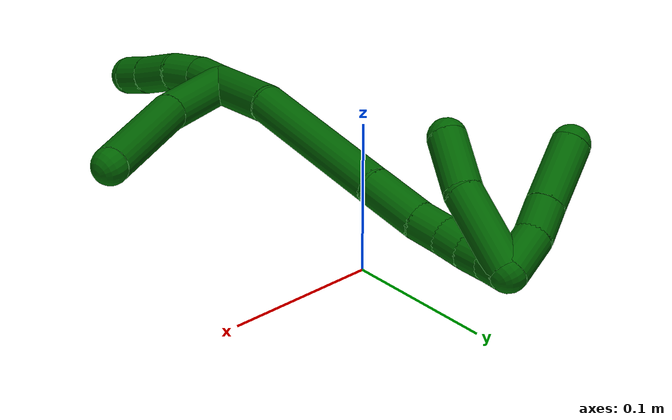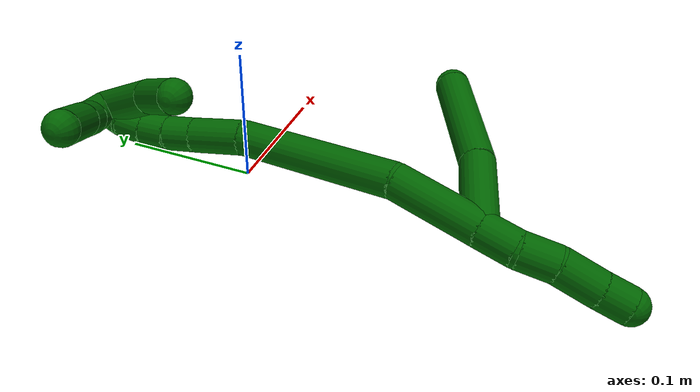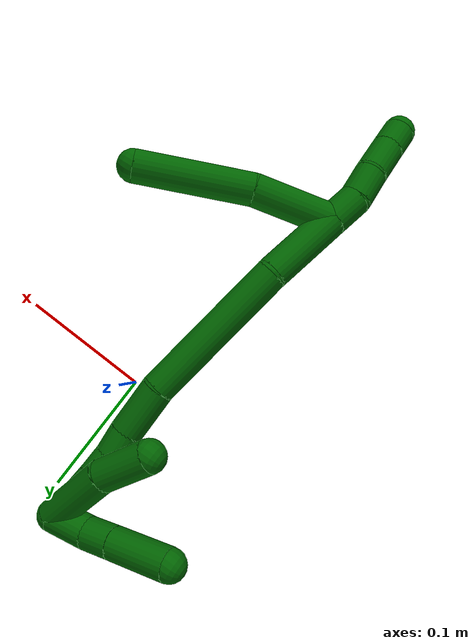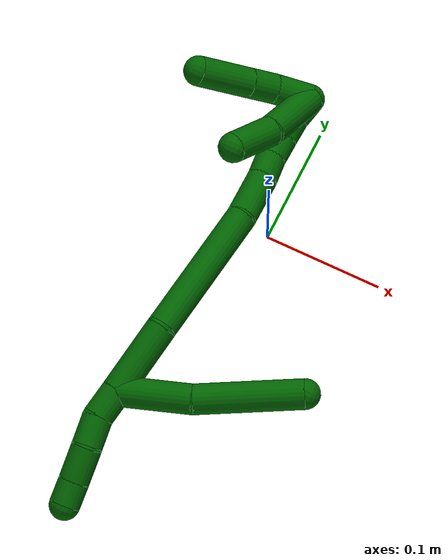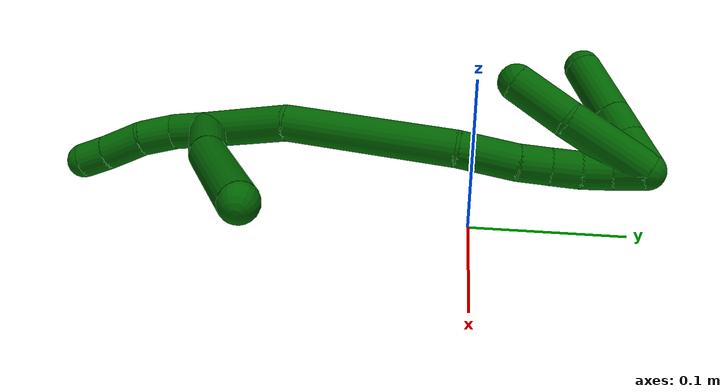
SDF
<sdf version="1.7">
 <world name="default">
  <model name="6">
   <static>0</static>
   <link name="6">
    <collision name="collision-cylinder-e_1_2_8">
     <pose>-0.010832 -0.00222 0.02858 0.077536 -0.361277 -0.014167</pose>
     <geometry><cylinder><radius>0.0125</radius><length>0.061288</length></cylinder></geometry>
     <surface>
      <friction><ode><mu>1.16</mu><mu2>1.16</mu2><slip1>0</slip1><slip2>0</slip2></ode></friction>
      <contact><ode><kp>1e+06</kp><kd>1</kd><max_vel>0</max_vel><min_depth>0.001</min_depth></ode></contact>
     </surface>
    </collision>
    <visual name="visual-cylinder-e_1_2_8">
     <pose>-0.010832 -0.00222 0.02858 0.077536 -0.361277 -0.014167</pose>
     <geometry><cylinder><radius>0.0125</radius><length>0.061288</length></cylinder></geometry>
     <material><ambient>0 0.392157 0.003922 1</ambient></material>
    </visual>
    <collision name="collision-cylinder-e_2_8_6">
     <pose>-0.041973 -0.001655 0.096494 -0.07071 -0.475605 0.017146</pose>
     <geometry><cylinder><radius>0.0125</radius><length>0.088712</length></cylinder></geometry>
     <surface>
      <friction><ode><mu>1.16</mu><mu2>1.16</mu2><slip1>0</slip1><slip2>0</slip2></ode></friction>
      <contact><ode><kp>1e+06</kp><kd>1</kd><max_vel>0</max_vel><min_depth>0.001</min_depth></ode></contact>
     </surface>
    </collision>
    <visual name="visual-cylinder-e_2_8_6">
     <pose>-0.041973 -0.001655 0.096494 -0.07071 -0.475605 0.017146</pose>
     <geometry><cylinder><radius>0.0125</radius><length>0.088712</length></cylinder></geometry>
     <material><ambient>0 0.392157 0.003922 1</ambient></material>
    </visual>
    <collision name="collision-cylinder-e_1_2_9">
     <pose>0.011132 -0.005742 -0.002696 2.00979 1.05283 1.48192</pose>
     <geometry><cylinder><radius>0.0125</radius><length>0.025626</length></cylinder></geometry>
     <surface>
      <friction><ode><mu>1.16</mu><mu2>1.16</mu2><slip1>0</slip1><slip2>0</slip2></ode></friction>
      <contact><ode><kp>1e+06</kp><kd>1</kd><max_vel>0</max_vel><min_depth>0.001</min_depth></ode></contact>
     </surface>
    </collision>
    <visual name="visual-cylinder-e_1_2_9">
     <pose>0.011132 -0.005742 -0.002696 2.00979 1.05283 1.48192</pose>
     <geometry><cylinder><radius>0.0125</radius><length>0.025626</length></cylinder></geometry>
     <material><ambient>0 0.392157 0.003922 1</ambient></material>
    </visual>
    <collision name="collision-cylinder-e_2_9_10">
     <pose>0.033242 -0.017289 -0.004602 1.43545 1.0806 0.964841</pose>
     <geometry><cylinder><radius>0.0125</radius><length>0.024885</length></cylinder></geometry>
     <surface>
      <friction><ode><mu>1.16</mu><mu2>1.16</mu2><slip1>0</slip1><slip2>0</slip2></ode></friction>
      <contact><ode><kp>1e+06</kp><kd>1</kd><max_vel>0</max_vel><min_depth>0.001</min_depth></ode></contact>
     </surface>
    </collision>
    <visual name="visual-cylinder-e_2_9_10">
     <pose>0.033242 -0.017289 -0.004602 1.43545 1.0806 0.964841</pose>
     <geometry><cylinder><radius>0.0125</radius><length>0.024885</length></cylinder></geometry>
     <material><ambient>0 0.392157 0.003922 1</ambient></material>
    </visual>
    <collision name="collision-cylinder-e_3_10_11">
     <pose>0.05823 -0.027234 -0.002918 1.35808 1.2772 1.07959</pose>
     <geometry><cylinder><radius>0.0125</radius><length>0.029274</length></cylinder></geometry>
     <surface>
      <friction><ode><mu>1.16</mu><mu2>1.16</mu2><slip1>0</slip1><slip2>0</slip2></ode></friction>
      <contact><ode><kp>1e+06</kp><kd>1</kd><max_vel>0</max_vel><min_depth>0.001</min_depth></ode></contact>
     </surface>
    </collision>
    <visual name="visual-cylinder-e_3_10_11">
     <pose>0.05823 -0.027234 -0.002918 1.35808 1.2772 1.07959</pose>
     <geometry><cylinder><radius>0.0125</radius><length>0.029274</length></cylinder></geometry>
     <material><ambient>0 0.392157 0.003922 1</ambient></material>
    </visual>
    <collision name="collision-cylinder-e_4_11_5">
     <pose>0.081751 -0.034766 -0.001573 1.43893 1.22543 1.10404</pose>
     <geometry><cylinder><radius>0.0125</radius><length>0.020215</length></cylinder></geometry>
     <surface>
      <friction><ode><mu>1.16</mu><mu2>1.16</mu2><slip1>0</slip1><slip2>0</slip2></ode></friction>
      <contact><ode><kp>1e+06</kp><kd>1</kd><max_vel>0</max_vel><min_depth>0.001</min_depth></ode></contact>
     </surface>
    </collision>
    <visual name="visual-cylinder-e_4_11_5">
     <pose>0.081751 -0.034766 -0.001573 1.43893 1.22543 1.10404</pose>
     <geometry><cylinder><radius>0.0125</radius><length>0.020215</length></cylinder></geometry>
     <material><ambient>0 0.392157 0.003922 1</ambient></material>
    </visual>
    <collision name="collision-cylinder-e_1_2_12">
     <pose>-0.027121 0.013369 0.006144 -1.14004 -1.07373 0.728922</pose>
     <geometry><cylinder><radius>0.0125</radius><length>0.061709</length></cylinder></geometry>
     <surface>
      <friction><ode><mu>1.16</mu><mu2>1.16</mu2><slip1>0</slip1><slip2>0</slip2></ode></friction>
      <contact><ode><kp>1e+06</kp><kd>1</kd><max_vel>0</max_vel><min_depth>0.001</min_depth></ode></contact>
     </surface>
    </collision>
    <visual name="visual-cylinder-e_1_2_12">
     <pose>-0.027121 0.013369 0.006144 -1.14004 -1.07373 0.728922</pose>
     <geometry><cylinder><radius>0.0125</radius><length>0.061709</length></cylinder></geometry>
     <material><ambient>0 0.392157 0.003922 1</ambient></material>
    </visual>
    <collision name="collision-cylinder-e_2_12_13">
     <pose>-0.097126 0.064398 0.024272 -1.26269 -0.826189 0.620285</pose>
     <geometry><cylinder><radius>0.0125</radius><length>0.116636</length></cylinder></geometry>
     <surface>
      <friction><ode><mu>1.16</mu><mu2>1.16</mu2><slip1>0</slip1><slip2>0</slip2></ode></friction>
      <contact><ode><kp>1e+06</kp><kd>1</kd><max_vel>0</max_vel><min_depth>0.001</min_depth></ode></contact>
     </surface>
    </collision>
    <visual name="visual-cylinder-e_2_12_13">
     <pose>-0.097126 0.064398 0.024272 -1.26269 -0.826189 0.620285</pose>
     <geometry><cylinder><radius>0.0125</radius><length>0.116636</length></cylinder></geometry>
     <material><ambient>0 0.392157 0.003922 1</ambient></material>
    </visual>
    <collision name="collision-cylinder-e_3_13_14">
     <pose>-0.152765 0.117473 0.038106 -1.45145 -0.687761 0.615289</pose>
     <geometry><cylinder><radius>0.0125</radius><length>0.040185</length></cylinder></geometry>
     <surface>
      <friction><ode><mu>1.16</mu><mu2>1.16</mu2><slip1>0</slip1><slip2>0</slip2></ode></friction>
      <contact><ode><kp>1e+06</kp><kd>1</kd><max_vel>0</max_vel><min_depth>0.001</min_depth></ode></contact>
     </surface>
    </collision>
    <visual name="visual-cylinder-e_3_13_14">
     <pose>-0.152765 0.117473 0.038106 -1.45145 -0.687761 0.615289</pose>
     <geometry><cylinder><radius>0.0125</radius><length>0.040185</length></cylinder></geometry>
     <material><ambient>0 0.392157 0.003922 1</ambient></material>
    </visual>
    <collision name="collision-cylinder-e_4_14_15">
     <pose>-0.172775 0.140695 0.039972 -1.56849 -0.748713 0.747145</pose>
     <geometry><cylinder><radius>0.0125</radius><length>0.021316</length></cylinder></geometry>
     <surface>
      <friction><ode><mu>1.16</mu><mu2>1.16</mu2><slip1>0</slip1><slip2>0</slip2></ode></friction>
      <contact><ode><kp>1e+06</kp><kd>1</kd><max_vel>0</max_vel><min_depth>0.001</min_depth></ode></contact>
     </surface>
    </collision>
    <visual name="visual-cylinder-e_4_14_15">
     <pose>-0.172775 0.140695 0.039972 -1.56849 -0.748713 0.747145</pose>
     <geometry><cylinder><radius>0.0125</radius><length>0.021316</length></cylinder></geometry>
     <material><ambient>0 0.392157 0.003922 1</ambient></material>
    </visual>
    <collision name="collision-cylinder-e_5_15_16">
     <pose>-0.187394 0.155246 0.041069 -1.41214 -0.82302 0.712542</pose>
     <geometry><cylinder><radius>0.0125</radius><length>0.020086</length></cylinder></geometry>
     <surface>
      <friction><ode><mu>1.16</mu><mu2>1.16</mu2><slip1>0</slip1><slip2>0</slip2></ode></friction>
      <contact><ode><kp>1e+06</kp><kd>1</kd><max_vel>0</max_vel><min_depth>0.001</min_depth></ode></contact>
     </surface>
    </collision>
    <visual name="visual-cylinder-e_5_15_16">
     <pose>-0.187394 0.155246 0.041069 -1.41214 -0.82302 0.712542</pose>
     <geometry><cylinder><radius>0.0125</radius><length>0.020086</length></cylinder></geometry>
     <material><ambient>0 0.392157 0.003922 1</ambient></material>
    </visual>
    <collision name="collision-cylinder-e_6_16_17">
     <pose>-0.202836 0.167786 0.043343 -1.36749 -0.938586 0.783675</pose>
     <geometry><cylinder><radius>0.0125</radius><length>0.020029</length></cylinder></geometry>
     <surface>
      <friction><ode><mu>1.16</mu><mu2>1.16</mu2><slip1>0</slip1><slip2>0</slip2></ode></friction>
      <contact><ode><kp>1e+06</kp><kd>1</kd><max_vel>0</max_vel><min_depth>0.001</min_depth></ode></contact>
     </surface>
    </collision>
    <visual name="visual-cylinder-e_6_16_17">
     <pose>-0.202836 0.167786 0.043343 -1.36749 -0.938586 0.783675</pose>
     <geometry><cylinder><radius>0.0125</radius><length>0.020029</length></cylinder></geometry>
     <material><ambient>0 0.392157 0.003922 1</ambient></material>
    </visual>
    <collision name="collision-cylinder-e_7_17_1">
     <pose>-0.219526 0.177898 0.047295 -1.00231 -1.03418 0.604018</pose>
     <geometry><cylinder><radius>0.0125</radius><length>0.020038</length></cylinder></geometry>
     <surface>
      <friction><ode><mu>1.16</mu><mu2>1.16</mu2><slip1>0</slip1><slip2>0</slip2></ode></friction>
      <contact><ode><kp>1e+06</kp><kd>1</kd><max_vel>0</max_vel><min_depth>0.001</min_depth></ode></contact>
     </surface>
    </collision>
    <visual name="visual-cylinder-e_7_17_1">
     <pose>-0.219526 0.177898 0.047295 -1.00231 -1.03418 0.604018</pose>
     <geometry><cylinder><radius>0.0125</radius><length>0.020038</length></cylinder></geometry>
     <material><ambient>0 0.392157 0.003922 1</ambient></material>
    </visual>
    <collision name="collision-cylinder-e_1_1_18">
     <pose>-0.227183 0.178801 0.035228 2.91528 0.062585 0.537573</pose>
     <geometry><cylinder><radius>0.0125</radius><length>0.030486</length></cylinder></geometry>
     <surface>
      <friction><ode><mu>1.16</mu><mu2>1.16</mu2><slip1>0</slip1><slip2>0</slip2></ode></friction>
      <contact><ode><kp>1e+06</kp><kd>1</kd><max_vel>0</max_vel><min_depth>0.001</min_depth></ode></contact>
     </surface>
    </collision>
    <visual name="visual-cylinder-e_1_1_18">
     <pose>-0.227183 0.178801 0.035228 2.91528 0.062585 0.537573</pose>
     <geometry><cylinder><radius>0.0125</radius><length>0.030486</length></cylinder></geometry>
     <material><ambient>0 0.392157 0.003922 1</ambient></material>
    </visual>
    <collision name="collision-cylinder-e_2_18_19">
     <pose>-0.22575 0.170273 0.009917 2.68782 0.041149 0.177798</pose>
     <geometry><cylinder><radius>0.0125</radius><length>0.023354</length></cylinder></geometry>
     <surface>
      <friction><ode><mu>1.16</mu><mu2>1.16</mu2><slip1>0</slip1><slip2>0</slip2></ode></friction>
      <contact><ode><kp>1e+06</kp><kd>1</kd><max_vel>0</max_vel><min_depth>0.001</min_depth></ode></contact>
     </surface>
    </collision>
    <visual name="visual-cylinder-e_2_18_19">
     <pose>-0.22575 0.170273 0.009917 2.68782 0.041149 0.177798</pose>
     <geometry><cylinder><radius>0.0125</radius><length>0.023354</length></cylinder></geometry>
     <material><ambient>0 0.392157 0.003922 1</ambient></material>
    </visual>
    <collision name="collision-cylinder-e_3_19_4">
     <pose>-0.224176 0.155637 -0.021566 2.71582 0.047363 0.218281</pose>
     <geometry><cylinder><radius>0.0125</radius><length>0.046161</length></cylinder></geometry>
     <surface>
      <friction><ode><mu>1.16</mu><mu2>1.16</mu2><slip1>0</slip1><slip2>0</slip2></ode></friction>
      <contact><ode><kp>1e+06</kp><kd>1</kd><max_vel>0</max_vel><min_depth>0.001</min_depth></ode></contact>
     </surface>
    </collision>
    <visual name="visual-cylinder-e_3_19_4">
     <pose>-0.224176 0.155637 -0.021566 2.71582 0.047363 0.218281</pose>
     <geometry><cylinder><radius>0.0125</radius><length>0.046161</length></cylinder></geometry>
     <material><ambient>0 0.392157 0.003922 1</ambient></material>
    </visual>
    <collision name="collision-cylinder-e_1_1_20">
     <pose>-0.217312 0.156811 0.039921 1.95029 0.376868 0.548536</pose>
     <geometry><cylinder><radius>0.0125</radius><length>0.058829</length></cylinder></geometry>
     <surface>
      <friction><ode><mu>1.16</mu><mu2>1.16</mu2><slip1>0</slip1><slip2>0</slip2></ode></friction>
      <contact><ode><kp>1e+06</kp><kd>1</kd><max_vel>0</max_vel><min_depth>0.001</min_depth></ode></contact>
     </surface>
    </collision>
    <visual name="visual-cylinder-e_1_1_20">
     <pose>-0.217312 0.156811 0.039921 1.95029 0.376868 0.548536</pose>
     <geometry><cylinder><radius>0.0125</radius><length>0.058829</length></cylinder></geometry>
     <material><ambient>0 0.392157 0.003922 1</ambient></material>
    </visual>
    <collision name="collision-cylinder-e_2_20_3">
     <pose>-0.19881 0.116106 0.018356 2.21252 0.382144 0.736769</pose>
     <geometry><cylinder><radius>0.0125</radius><length>0.041171</length></cylinder></geometry>
     <surface>
      <friction><ode><mu>1.16</mu><mu2>1.16</mu2><slip1>0</slip1><slip2>0</slip2></ode></friction>
      <contact><ode><kp>1e+06</kp><kd>1</kd><max_vel>0</max_vel><min_depth>0.001</min_depth></ode></contact>
     </surface>
    </collision>
    <visual name="visual-cylinder-e_2_20_3">
     <pose>-0.19881 0.116106 0.018356 2.21252 0.382144 0.736769</pose>
     <geometry><cylinder><radius>0.0125</radius><length>0.041171</length></cylinder></geometry>
     <material><ambient>0 0.392157 0.003922 1</ambient></material>
    </visual>
    <collision name="collision-sphere-3">
     <pose>-0.191134 0.100805 0.006922 0 -0 0</pose>
     <geometry><sphere><radius>0.0125</radius></sphere></geometry>
     <surface>
      <friction><ode><mu>1.16</mu><mu2>1.16</mu2><slip1>0</slip1><slip2>0</slip2></ode></friction>
      <contact><ode><kp>1e+06</kp><kd>1</kd><max_vel>0</max_vel><min_depth>0.001</min_depth></ode></contact>
     </surface>
    </collision>
    <visual name="visual-sphere-3">
     <pose>-0.191134 0.100805 0.006922 0 -0 0</pose>
     <geometry><sphere><radius>0.0125</radius></sphere></geometry>
     <material><ambient>0 0.392157 0.003922 1</ambient></material>
    </visual>
    <collision name="collision-sphere-20">
     <pose>-0.206487 0.131407 0.029789 0 -0 0</pose>
     <geometry><sphere><radius>0.0125</radius></sphere></geometry>
     <surface>
      <friction><ode><mu>1.16</mu><mu2>1.16</mu2><slip1>0</slip1><slip2>0</slip2></ode></friction>
      <contact><ode><kp>1e+06</kp><kd>1</kd><max_vel>0</max_vel><min_depth>0.001</min_depth></ode></contact>
     </surface>
    </collision>
    <visual name="visual-sphere-20">
     <pose>-0.206487 0.131407 0.029789 0 -0 0</pose>
     <geometry><sphere><radius>0.0125</radius></sphere></geometry>
     <material><ambient>0 0.392157 0.003922 1</ambient></material>
    </visual>
    <collision name="collision-sphere-4">
     <pose>-0.223084 0.146115 -0.042562 0 -0 0</pose>
     <geometry><sphere><radius>0.0125</radius></sphere></geometry>
     <surface>
      <friction><ode><mu>1.16</mu><mu2>1.16</mu2><slip1>0</slip1><slip2>0</slip2></ode></friction>
      <contact><ode><kp>1e+06</kp><kd>1</kd><max_vel>0</max_vel><min_depth>0.001</min_depth></ode></contact>
     </surface>
    </collision>
    <visual name="visual-sphere-4">
     <pose>-0.223084 0.146115 -0.042562 0 -0 0</pose>
     <geometry><sphere><radius>0.0125</radius></sphere></geometry>
     <material><ambient>0 0.392157 0.003922 1</ambient></material>
    </visual>
    <collision name="collision-sphere-11">
     <pose>0.072241 -0.031374 -0.002023 0 -0 0</pose>
     <geometry><sphere><radius>0.0125</radius></sphere></geometry>
     <surface>
      <friction><ode><mu>1.16</mu><mu2>1.16</mu2><slip1>0</slip1><slip2>0</slip2></ode></friction>
      <contact><ode><kp>1e+06</kp><kd>1</kd><max_vel>0</max_vel><min_depth>0.001</min_depth></ode></contact>
     </surface>
    </collision>
    <visual name="visual-sphere-11">
     <pose>0.072241 -0.031374 -0.002023 0 -0 0</pose>
     <geometry><sphere><radius>0.0125</radius></sphere></geometry>
     <material><ambient>0 0.392157 0.003922 1</ambient></material>
    </visual>
    <collision name="collision-sphere-10">
     <pose>0.044219 -0.023093 -0.003812 0 -0 0</pose>
     <geometry><sphere><radius>0.0125</radius></sphere></geometry>
     <surface>
      <friction><ode><mu>1.16</mu><mu2>1.16</mu2><slip1>0</slip1><slip2>0</slip2></ode></friction>
      <contact><ode><kp>1e+06</kp><kd>1</kd><max_vel>0</max_vel><min_depth>0.001</min_depth></ode></contact>
     </surface>
    </collision>
    <visual name="visual-sphere-10">
     <pose>0.044219 -0.023093 -0.003812 0 -0 0</pose>
     <geometry><sphere><radius>0.0125</radius></sphere></geometry>
     <material><ambient>0 0.392157 0.003922 1</ambient></material>
    </visual>
    <collision name="collision-sphere-6">
     <pose>-0.062283 0.001131 0.135829 0 -0 0</pose>
     <geometry><sphere><radius>0.0125</radius></sphere></geometry>
     <surface>
      <friction><ode><mu>1.16</mu><mu2>1.16</mu2><slip1>0</slip1><slip2>0</slip2></ode></friction>
      <contact><ode><kp>1e+06</kp><kd>1</kd><max_vel>0</max_vel><min_depth>0.001</min_depth></ode></contact>
     </surface>
    </collision>
    <visual name="visual-sphere-6">
     <pose>-0.062283 0.001131 0.135829 0 -0 0</pose>
     <geometry><sphere><radius>0.0125</radius></sphere></geometry>
     <material><ambient>0 0.392157 0.003922 1</ambient></material>
    </visual>
    <collision name="collision-sphere-9">
     <pose>0.022265 -0.011485 -0.005393 0 -0 0</pose>
     <geometry><sphere><radius>0.0125</radius></sphere></geometry>
     <surface>
      <friction><ode><mu>1.16</mu><mu2>1.16</mu2><slip1>0</slip1><slip2>0</slip2></ode></friction>
      <contact><ode><kp>1e+06</kp><kd>1</kd><max_vel>0</max_vel><min_depth>0.001</min_depth></ode></contact>
     </surface>
    </collision>
    <visual name="visual-sphere-9">
     <pose>0.022265 -0.011485 -0.005393 0 -0 0</pose>
     <geometry><sphere><radius>0.0125</radius></sphere></geometry>
     <material><ambient>0 0.392157 0.003922 1</ambient></material>
    </visual>
    <collision name="collision-sphere-2">
     <geometry><sphere><radius>0.0125</radius></sphere></geometry>
     <surface>
      <friction><ode><mu>1.16</mu><mu2>1.16</mu2><slip1>0</slip1><slip2>0</slip2></ode></friction>
      <contact><ode><kp>1e+06</kp><kd>1</kd><max_vel>0</max_vel><min_depth>0.001</min_depth></ode></contact>
     </surface>
    </collision>
    <visual name="visual-sphere-2">
     <geometry><sphere><radius>0.0125</radius></sphere></geometry>
     <material><ambient>0 0.392157 0.003922 1</ambient></material>
    </visual>
    <collision name="collision-sphere-19">
     <pose>-0.225269 0.165159 -0.00057 0 -0 0</pose>
     <geometry><sphere><radius>0.0125</radius></sphere></geometry>
     <surface>
      <friction><ode><mu>1.16</mu><mu2>1.16</mu2><slip1>0</slip1><slip2>0</slip2></ode></friction>
      <contact><ode><kp>1e+06</kp><kd>1</kd><max_vel>0</max_vel><min_depth>0.001</min_depth></ode></contact>
     </surface>
    </collision>
    <visual name="visual-sphere-19">
     <pose>-0.225269 0.165159 -0.00057 0 -0 0</pose>
     <geometry><sphere><radius>0.0125</radius></sphere></geometry>
     <material><ambient>0 0.392157 0.003922 1</ambient></material>
    </visual>
    <collision name="collision-sphere-8">
     <pose>-0.021663 -0.004441 0.05716 0 -0 0</pose>
     <geometry><sphere><radius>0.0125</radius></sphere></geometry>
     <surface>
      <friction><ode><mu>1.16</mu><mu2>1.16</mu2><slip1>0</slip1><slip2>0</slip2></ode></friction>
      <contact><ode><kp>1e+06</kp><kd>1</kd><max_vel>0</max_vel><min_depth>0.001</min_depth></ode></contact>
     </surface>
    </collision>
    <visual name="visual-sphere-8">
     <pose>-0.021663 -0.004441 0.05716 0 -0 0</pose>
     <geometry><sphere><radius>0.0125</radius></sphere></geometry>
     <material><ambient>0 0.392157 0.003922 1</ambient></material>
    </visual>
    <collision name="collision-sphere-5">
     <pose>0.091262 -0.038158 -0.001123 0 -0 0</pose>
     <geometry><sphere><radius>0.0125</radius></sphere></geometry>
     <surface>
      <friction><ode><mu>1.16</mu><mu2>1.16</mu2><slip1>0</slip1><slip2>0</slip2></ode></friction>
      <contact><ode><kp>1e+06</kp><kd>1</kd><max_vel>0</max_vel><min_depth>0.001</min_depth></ode></contact>
     </surface>
    </collision>
    <visual name="visual-sphere-5">
     <pose>0.091262 -0.038158 -0.001123 0 -0 0</pose>
     <geometry><sphere><radius>0.0125</radius></sphere></geometry>
     <material><ambient>0 0.392157 0.003922 1</ambient></material>
    </visual>
    <collision name="collision-sphere-12">
     <pose>-0.054241 0.026738 0.012287 0 -0 0</pose>
     <geometry><sphere><radius>0.0125</radius></sphere></geometry>
     <surface>
      <friction><ode><mu>1.16</mu><mu2>1.16</mu2><slip1>0</slip1><slip2>0</slip2></ode></friction>
      <contact><ode><kp>1e+06</kp><kd>1</kd><max_vel>0</max_vel><min_depth>0.001</min_depth></ode></contact>
     </surface>
    </collision>
    <visual name="visual-sphere-12">
     <pose>-0.054241 0.026738 0.012287 0 -0 0</pose>
     <geometry><sphere><radius>0.0125</radius></sphere></geometry>
     <material><ambient>0 0.392157 0.003922 1</ambient></material>
    </visual>
    <collision name="collision-sphere-13">
     <pose>-0.14001 0.102058 0.036257 0 -0 0</pose>
     <geometry><sphere><radius>0.0125</radius></sphere></geometry>
     <surface>
      <friction><ode><mu>1.16</mu><mu2>1.16</mu2><slip1>0</slip1><slip2>0</slip2></ode></friction>
      <contact><ode><kp>1e+06</kp><kd>1</kd><max_vel>0</max_vel><min_depth>0.001</min_depth></ode></contact>
     </surface>
    </collision>
    <visual name="visual-sphere-13">
     <pose>-0.14001 0.102058 0.036257 0 -0 0</pose>
     <geometry><sphere><radius>0.0125</radius></sphere></geometry>
     <material><ambient>0 0.392157 0.003922 1</ambient></material>
    </visual>
    <collision name="collision-sphere-14">
     <pose>-0.16552 0.132887 0.039954 0 -0 0</pose>
     <geometry><sphere><radius>0.0125</radius></sphere></geometry>
     <surface>
      <friction><ode><mu>1.16</mu><mu2>1.16</mu2><slip1>0</slip1><slip2>0</slip2></ode></friction>
      <contact><ode><kp>1e+06</kp><kd>1</kd><max_vel>0</max_vel><min_depth>0.001</min_depth></ode></contact>
     </surface>
    </collision>
    <visual name="visual-sphere-14">
     <pose>-0.16552 0.132887 0.039954 0 -0 0</pose>
     <geometry><sphere><radius>0.0125</radius></sphere></geometry>
     <material><ambient>0 0.392157 0.003922 1</ambient></material>
    </visual>
    <collision name="collision-sphere-15">
     <pose>-0.18003 0.148503 0.03999 0 -0 0</pose>
     <geometry><sphere><radius>0.0125</radius></sphere></geometry>
     <surface>
      <friction><ode><mu>1.16</mu><mu2>1.16</mu2><slip1>0</slip1><slip2>0</slip2></ode></friction>
      <contact><ode><kp>1e+06</kp><kd>1</kd><max_vel>0</max_vel><min_depth>0.001</min_depth></ode></contact>
     </surface>
    </collision>
    <visual name="visual-sphere-15">
     <pose>-0.18003 0.148503 0.03999 0 -0 0</pose>
     <geometry><sphere><radius>0.0125</radius></sphere></geometry>
     <material><ambient>0 0.392157 0.003922 1</ambient></material>
    </visual>
    <collision name="collision-sphere-16">
     <pose>-0.194757 0.16199 0.042148 0 -0 0</pose>
     <geometry><sphere><radius>0.0125</radius></sphere></geometry>
     <surface>
      <friction><ode><mu>1.16</mu><mu2>1.16</mu2><slip1>0</slip1><slip2>0</slip2></ode></friction>
      <contact><ode><kp>1e+06</kp><kd>1</kd><max_vel>0</max_vel><min_depth>0.001</min_depth></ode></contact>
     </surface>
    </collision>
    <visual name="visual-sphere-16">
     <pose>-0.194757 0.16199 0.042148 0 -0 0</pose>
     <geometry><sphere><radius>0.0125</radius></sphere></geometry>
     <material><ambient>0 0.392157 0.003922 1</ambient></material>
    </visual>
    <collision name="collision-sphere-17">
     <pose>-0.210915 0.173582 0.044538 0 -0 0</pose>
     <geometry><sphere><radius>0.0125</radius></sphere></geometry>
     <surface>
      <friction><ode><mu>1.16</mu><mu2>1.16</mu2><slip1>0</slip1><slip2>0</slip2></ode></friction>
      <contact><ode><kp>1e+06</kp><kd>1</kd><max_vel>0</max_vel><min_depth>0.001</min_depth></ode></contact>
     </surface>
    </collision>
    <visual name="visual-sphere-17">
     <pose>-0.210915 0.173582 0.044538 0 -0 0</pose>
     <geometry><sphere><radius>0.0125</radius></sphere></geometry>
     <material><ambient>0 0.392157 0.003922 1</ambient></material>
    </visual>
    <collision name="collision-sphere-1">
     <pose>-0.228137 0.182215 0.050053 0 -0 0</pose>
     <geometry><sphere><radius>0.0125</radius></sphere></geometry>
     <surface>
      <friction><ode><mu>1.16</mu><mu2>1.16</mu2><slip1>0</slip1><slip2>0</slip2></ode></friction>
      <contact><ode><kp>1e+06</kp><kd>1</kd><max_vel>0</max_vel><min_depth>0.001</min_depth></ode></contact>
     </surface>
    </collision>
    <visual name="visual-sphere-1">
     <pose>-0.228137 0.182215 0.050053 0 -0 0</pose>
     <geometry><sphere><radius>0.0125</radius></sphere></geometry>
     <material><ambient>0 0.392157 0.003922 1</ambient></material>
    </visual>
    <collision name="collision-sphere-18">
     <pose>-0.22623 0.175388 0.020403 0 -0 0</pose>
     <geometry><sphere><radius>0.0125</radius></sphere></geometry>
     <surface>
      <friction><ode><mu>1.16</mu><mu2>1.16</mu2><slip1>0</slip1><slip2>0</slip2></ode></friction>
      <contact><ode><kp>1e+06</kp><kd>1</kd><max_vel>0</max_vel><min_depth>0.001</min_depth></ode></contact>
     </surface>
    </collision>
    <visual name="visual-sphere-18">
     <pose>-0.22623 0.175388 0.020403 0 -0 0</pose>
     <geometry><sphere><radius>0.0125</radius></sphere></geometry>
     <material><ambient>0 0.392157 0.003922 1</ambient></material>
    </visual>
    <inertial>
     <pose>-0.104643 0.072475 0.028879 0 -0 0</pose>
     <mass>0.75</mass>
     <inertia>
      <ixx>0.000278</ixx>
      <ixy>0</ixy>
      <ixz>0</ixz>
      <iyy>0.000279</iyy>
      <iyz>0</iyz>
      <izz>7.2e-05</izz>
     </inertia>
    </inertial>
   </link>
   <pose>-0.043564 -0.185357 0.042204 -1.82035 0.683565 -1.65473</pose>
  </model>
 </world>
</sdf>
